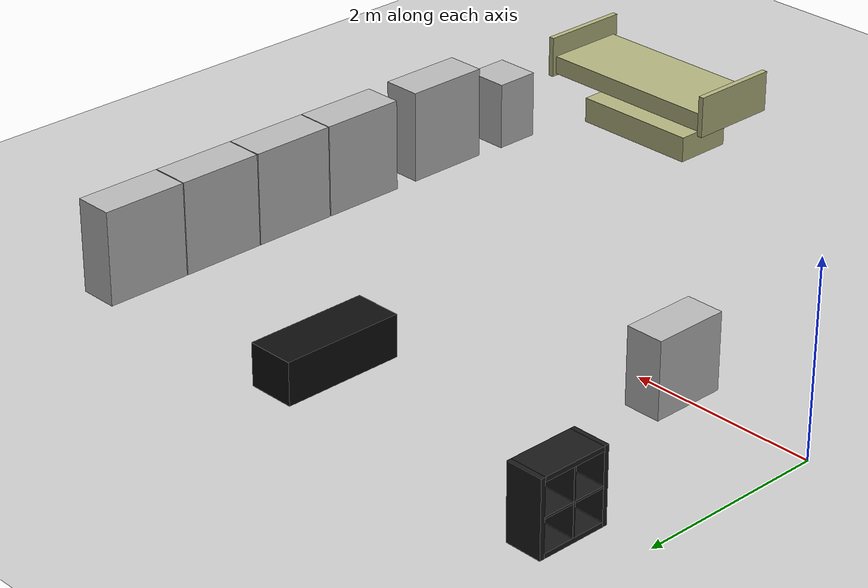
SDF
<sdf version="1.6">
 <world name="robotics_testlab_B">
  <light name="sun" type="directional">
   <direction>0.5 0.1 -0.9</direction>
   <pose>0 0 10 0 0 0</pose>
   <specular>0.2 0.2 0.2 1</specular>
   <diffuse>0.8 0.8 0.8 1</diffuse>
   <attenuation>
    <range>1000</range>
    <quadratic>0.001</quadratic>
    <constant>0.9</constant>
    <linear>0.01</linear>
   </attenuation>
  </light>
  <model name="living_room" type="waypoint"><pose>4 0.7 0 0 0 0</pose><static>true</static></model>
  <model name="corridor" type="waypoint"><pose>0.5 1.5 0 0 0 0</pose><static>true</static></model>
  <model name="bedroom" type="waypoint"><pose>5.3 -2.4 0 0 0 0</pose><static>true</static></model>
  <model name="test_person" type="waypoint"><pose>3.7 -0.448 0 0 0 0</pose><static>true</static></model>
  <model name="operator" type="waypoint"><pose>0.05 -2.445 0 0 0 0</pose><static>true</static></model>
  <model name="wait" type="waypoint"><pose>2.638 1.951 0 0 0 0</pose><static>true</static></model>
  <model name="initial_pose" type="waypoint"><pose>0.9 0 0 0 0 1.57</pose><static>true</static></model>
  <model name="exit" type="waypoint"><pose>5.269 -2.139 0 0 0 -1.57</pose><static>true</static></model>
  <model name="registration_table1" type="waypoint"><static>true</static></model>
  <model name="registration_table2" type="waypoint"><pose>3.13 0.665 0 0 0 0</pose><static>true</static></model>
  <model name="registration_table3" type="waypoint"><pose>3.13 0.665 0 0 0 0</pose><static>true</static></model>
  <model name="exit_1_rips" type="waypoint"><pose>5 -2 0 0 0 0</pose><static>true</static></model>
  <model name="exit_2_rips" type="waypoint"><pose>5 -2 0 0 0 0</pose><static>true</static></model>
  <model name="exit_3_rips" type="waypoint"><pose>5 -2 0 0 0 0</pose><static>true</static></model>
  <model name="exit_4_rips" type="waypoint"><pose>5 -2 0 0 0 0</pose><static>true</static></model>
  <model name="avoid_that_start" type="waypoint"><pose>2.684 1.969 0 0 0 0</pose><static>true</static></model>
  <model name="avoid_that_wp1" type="waypoint"><pose>5.595 1.99 0 0 0 0</pose><static>true</static></model>
  <model name="avoid_that_wp2" type="waypoint"><pose>5.834 -0.498 0 0 0 0</pose><static>true</static></model>
  <model name="avoid_that_wp3" type="waypoint"><pose>5.595 1.99 0 0 0 0</pose><static>true</static></model>
  <model name="what_did_you_say_start" type="waypoint">
   <pose>5.834 -0.498 0 0 0 0</pose>
   <static>true</static>
  </model>
  <include><name>floor</name><uri>model://ground_plane</uri></include>
  <include>
   <pose>4.05 2 0 0 0 0</pose>
   <name>pico_case</name>
   <uri>model://robotics_testlab_B/pico_case</uri>
  </include>
  <include>
   <pose>6.6 2.2 0 0 0 0</pose>
   <name>black_cabinet1</name>
   <uri>model://robotics_testlab_B/black_cabinet</uri>
  </include>
  <include>
   <pose>6.6 1.27 0 0 0 0</pose>
   <name>black_cabinet2</name>
   <uri>model://robotics_testlab_B/black_cabinet</uri>
  </include>
  <include>
   <pose>6.6 0.34 0 0 0 0</pose>
   <name>black_cabinet3</name>
   <uri>model://robotics_testlab_B/black_cabinet</uri>
  </include>
  <include>
   <pose>6.6 -0.59 0 0 0 0</pose>
   <name>black_cabinet4</name>
   <uri>model://robotics_testlab_B/black_cabinet</uri>
  </include>
  <include>
   <pose>6.6 -1.77 0 0 0 0</pose>
   <name>black_cabinet5</name>
   <uri>model://robotics_testlab_B/black_cabinet</uri>
  </include>
  <include>
   <pose>1.55 0.05 0 0 0 0</pose>
   <name>hallway_cabinet</name>
   <uri>model://robotics_testlab_B/hallway_cabinet</uri>
  </include>
  <include>
   <pose>0.7 2.4 0 0 0 0</pose>
   <name>corridor_cabinet</name>
   <uri>model://robotics_testlab_B/corridor_cabinet</uri>
  </include>
  <include>
   <pose>6.6 -2.77 0 0 0 0</pose>
   <name>bed_cabinet</name>
   <uri>model://robotics_testlab_B/bed_cabinet</uri>
  </include>
  <include><pose>5.5 -4 0 0 0 0</pose><name>bed</name><uri>model://bed</uri></include>
  <physics type="ode">
   <real_time_update_rate>333.0</real_time_update_rate>
   <max_step_size>0.003</max_step_size>
   <ode><constraints><cfm>0.0001</cfm></constraints><solver><type>quick</type><iters>100</iters></solver></ode>
  </physics>
 </world>
</sdf>

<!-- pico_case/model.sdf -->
<sdf version="1.6">
  <model name="robotics_testlab_B/pico_case">
    <link name="1_link">
      <collision name="1_col">
        <geometry>
          <box>
            <size>0.51 1.31 0.45</size>
          </box>
        </geometry>
      </collision>
      <visual name="1_vis">
        <geometry>
          <box>
            <size>0.51 1.31 0.45</size>
          </box>
        </geometry>
        <material>
          <ambient>0.05 0.05 0.05 1</ambient>
        </material>
      </visual>
      <pose>0 0 0.225 0 0 0</pose>
    </link>
    <static>true</static>
  </model>
</sdf>

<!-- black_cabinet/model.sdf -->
<sdf version="1.6">
  <model name="robotics_testlab_B/black_cabinet" type="cabinet">
    <link name="1_link">
      <collision name="1_col">
        <geometry>
          <box>
            <size>0.42 0.92 1.0</size>
          </box>
        </geometry>
      </collision>
      <visual name="1_vis">
        <geometry>
          <box>
            <size>0.42 0.92 1.0</size>
          </box>
        </geometry>
      </visual>
      <pose>0 0 0.5 0 0 0</pose>
    </link>
    <link name="in_front_of">
      <virtual_volume name="in_front_of_vv">
        <geometry>
          <box>
            <size>0.6 0.6 0.01</size>
          </box>
        </geometry>
        <pose>0.6 0.0 0.005 0 0 0</pose>
      </virtual_volume>
    </link>
    <static>true</static>
  </model>
</sdf>

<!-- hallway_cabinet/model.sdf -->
<sdf version="1.6">
  <model name="robotics_testlab_B/hallway_cabinet">
    <link name="1_link">
      <collision name="1_col">
        <geometry>
          <box>
            <size>0.4 0.8 0.81</size>
          </box>
        </geometry>
        <pose>0.0 0.0 0.405 0 0 0</pose>
      </collision>
      <visual name="1_vis">
        <geometry>
          <box>
            <size>0.4 0.8 0.81</size>
          </box>
        </geometry>
        <pose>0.0 0.0 0.405 0 0 0</pose>
      </visual>
      <pose>0 0 0 0 0 0</pose>
    </link>
    <link name="on_top_of">
      <virtual_volume name="on_top_of_vv">
        <geometry>
          <box>
            <size>0.4 0.8 0.38</size>
          </box>
        </geometry>
        <pose>0.0 0.0 1.01 0 0 0</pose>
      </virtual_volume>
    </link>
    <static>true</static>
  </model>
</sdf>

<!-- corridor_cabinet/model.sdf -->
<sdf version="1.6">
  <model name="robotics_testlab_B/corridor_cabinet" type="cabinet">
    <link name="1_link">
      <collision name="1_col">
        <geometry>
          <box>
            <size>0.395 0.05 0.79</size>
          </box>
        </geometry>
      </collision>
      <visual name="1_vis">
        <geometry>
          <box>
            <size>0.395 0.05 0.79</size>
          </box>
        </geometry>
        <material>
          <ambient>0.1 0.1 0.1 1</ambient>
        </material>
      </visual>
      <pose>0 -0.37 0.395 0 0 0</pose>
    </link>
    <link name="2_link">
      <collision name="2_col">
        <geometry>
          <box>
            <size>0.395 0.05 0.79</size>
          </box>
        </geometry>
      </collision>
      <visual name="2_vis">
        <geometry>
          <box>
            <size>0.395 0.05 0.79</size>
          </box>
        </geometry>
        <material>
          <ambient>0.1 0.1 0.1 1</ambient>
        </material>
      </visual>
      <pose>0 0.37 0.395 0 0 0</pose>
    </link>
    <link name="3_link">
      <collision name="3_col">
        <geometry>
          <box>
            <size>0.395 0.69 0.05</size>
          </box>
        </geometry>
      </collision>
      <visual name="3_vis">
        <geometry>
          <box>
            <size>0.395 0.69 0.05</size>
          </box>
        </geometry>
        <material>
          <ambient>0.1 0.1 0.1 1</ambient>
        </material>
      </visual>
      <pose>0 0 0.765 0 0 0</pose>
    </link>
    <link name="4_link">
      <collision name="4_col">
        <geometry>
          <box>
            <size>0.395 0.69 0.05</size>
          </box>
        </geometry>
      </collision>
      <visual name="4_vis">
        <geometry>
          <box>
            <size>0.395 0.69 0.05</size>
          </box>
        </geometry>
        <material>
          <ambient>0.1 0.1 0.1 1</ambient>
        </material>
      </visual>
      <pose>0 0 0.025 0 0 0</pose>
    </link>
    <link name="5_link">
      <collision name="5_col">
        <geometry>
          <box>
            <size>0.395 0.69 0.02</size>
          </box>
        </geometry>
      </collision>
      <visual name="5_vis">
        <geometry>
          <box>
            <size>0.395 0.69 0.02</size>
          </box>
        </geometry>
        <material>
          <ambient>0.1 0.1 0.1 1</ambient>
        </material>
      </visual>
      <pose>0 0 0.395 0 0 0</pose>
    </link>
    <link name="6_link">
      <collision name="6_col">
        <geometry>
          <box>
            <size>0.395 0.02 0.69</size>
          </box>
        </geometry>
      </collision>
      <visual name="6_vis">
        <geometry>
          <box>
            <size>0.395 0.02 0.69</size>
          </box>
        </geometry>
        <material>
          <ambient>0.1 0.1 0.1 1</ambient>
        </material>
      </visual>
      <pose>0 0 0.395 0 0 0</pose>
    </link>
    <link name="in_front_of">
      <virtual_volume name="in_front_of_vv">
        <geometry>
          <box>
            <size>0.7 0.79 0</size>
          </box>
        </geometry>
        <pose>0.35 0.0 0.0 0 0 0</pose>
      </virtual_volume>
    </link>
    <link name="on_top_of">
      <virtual_volume name="on_top_of_vv">
        <geometry>
          <box>
            <size>0.34 0.74 0.39</size>
          </box>
        </geometry>
        <pose>0.0 0.0 1.005 0 0 0</pose>
      </virtual_volume>
    </link>
    <static>true</static>
  </model>
</sdf>

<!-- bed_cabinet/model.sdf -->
<sdf version="1.6">
  <model name="robotics_testlab_B/bed_cabinet">
    <link name="1_link">
      <collision name="1_col">
        <geometry>
          <box>
            <size>0.48 0.48 0.73</size>
          </box>
        </geometry>
      </collision>
      <visual name="1_vis">
        <geometry>
          <box>
            <size>0.48 0.48 0.73</size>
          </box>
        </geometry>
      </visual>
      <pose>0 0 0.365 0 0 0</pose>
    </link>
    <static>true</static>
  </model>
</sdf>

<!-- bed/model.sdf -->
<sdf version="1.6">
  <model name="robotics_testlab_B/bed">
    <link name="1_link">
      <collision name="1_col">
        <geometry>
          <box>
            <size>2.1 0.9 0.2</size>
          </box>
        </geometry>
      </collision>
      <visual name="1_vis">
        <geometry>
          <box>
            <size>2.1 0.9 0.2</size>
          </box>
        </geometry>
        <material>
          <ambient>0.7 0.7 0.5 1</ambient>
        </material>
      </visual>
      <pose>0.0 0.0 0.6 0 0 0</pose>
    </link>
    <link name="2_link">
      <collision name="2_col">
        <geometry>
          <box>
            <size>1.42 0.65 0.28</size>
          </box>
        </geometry>
      </collision>
      <visual name="2_vis">
        <geometry>
          <box>
            <size>1.42 0.65 0.28</size>
          </box>
        </geometry>
        <material>
          <ambient>0.7 0.7 0.5 1</ambient>
        </material>
      </visual>
      <pose>0.0 0.0 0.14 0 0 0</pose>
    </link>
    <link name="3_link">
      <collision name="3_col">
        <geometry>
          <box>
            <size>0.06 1.0 0.45</size>
          </box>
        </geometry>
      </collision>
      <visual name="3_vis">
        <geometry>
          <box>
            <size>0.06 1.0 0.45</size>
          </box>
        </geometry>
        <material>
          <ambient>0.7 0.7 0.5 1</ambient>
        </material>
      </visual>
      <pose>1.08 0.0 0.7 0 0 0</pose>
    </link>
    <link name="4_link">
      <collision name="4_col">
        <geometry>
          <box>
            <size>0.06 1.0 0.45</size>
          </box>
        </geometry>
      </collision>
      <visual name="4_vis">
        <geometry>
          <box>
            <size>0.06 1.0 0.45</size>
          </box>
        </geometry>
        <material>
          <ambient>0.7 0.7 0.5 1</ambient>
        </material>
      </visual>
      <pose>-1.08 0.0 0.7 0 0 0</pose>
    </link>
    <link name="in_front_of">
      <virtual_volume name="in_front_of_vv">
        <geometry>
          <box>
            <size>2 0.6 0.01</size>
          </box>
        </geometry>
        <pose>0.0 -0.9 0.005 0 0 0</pose>
      </virtual_volume>
    </link>
    <static>true</static>
  </model>
</sdf>
